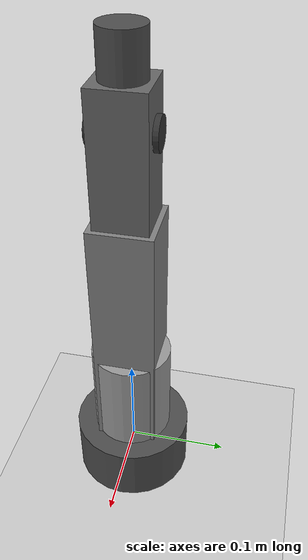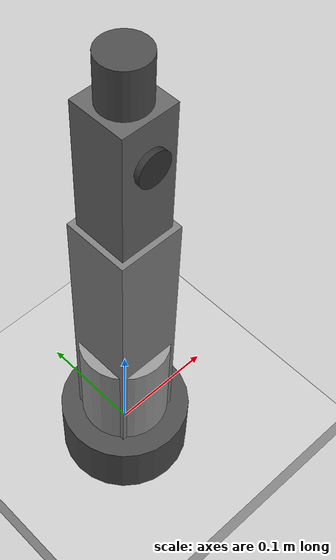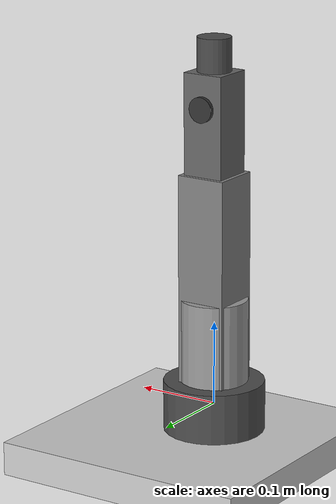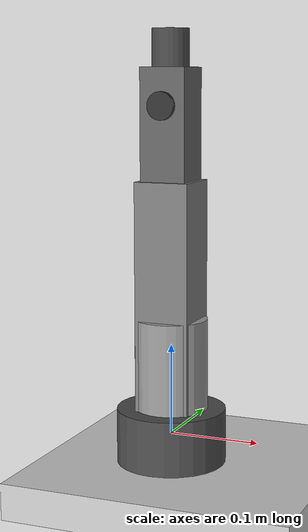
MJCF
<mujoco model="niryo_ned2_minimal">
      <compiler angle="radian" meshdir="meshes/"/>

      <option timestep="0.002" integrator="RK4"/>

      <asset>
        <material name="joint_material" rgba="0.2 0.2 0.2 1"/>
        <material name="link_material" rgba="0.7 0.7 0.7 1"/>
      </asset>

      <worldbody>
        <!-- Base -->
        <body name="base_link" pos="0 0 0">
          <geom name="base" type="cylinder" size="0.06 0.03" rgba="0.3 0.3 0.3 1"/>

          <!-- Joint 1 (Base rotation) -->
          <body name="shoulder_link" pos="0 0 0.05">
            <joint name="joint_1" type="hinge" axis="0 0 1" range="-2.97 2.97"/>
            <geom name="shoulder" type="cylinder" size="0.04 0.08" rgba="0.6 0.6 0.6 1"/>

            <!-- Joint 2 (Shoulder) -->
            <body name="arm_link" pos="0 0 0.08" euler="1.57 0 0">
              <joint name="joint_2" type="hinge" axis="0 0 1" range="-1.57 0.64"/>
              <geom name="arm" type="box" size="0.03 0.15 0.03" rgba="0.5 0.5 0.5 1"/>

              <!-- Joint 3 (Elbow) -->
              <body name="forearm_link" pos="0 0.15 0" euler="0 0 0">
                <joint name="joint_3" type="hinge" axis="0 0 1" range="-1.4 1.4"/>
                <geom name="forearm" type="box" size="0.025 0.12 0.025" rgba="0.4 0.4 0.4 1"/>

                <!-- Joint 4 (Wrist 1) -->
                <body name="wrist_link" pos="0 0.12 0" euler="1.57 0 0">
                  <joint name="joint_4" type="hinge" axis="0 0 1" range="-2.0 2.0"/>
                  <geom name="wrist" type="cylinder" size="0.02 0.04" rgba="0.3 0.3 0.3 1"/>

                  <!-- Joint 5 (Wrist 2) -->
                  <body name="wrist2_link" pos="0 0 0.04" euler="-1.57 0 0">
                    <joint name="joint_5" type="hinge" axis="0 0 1" range="-1.7 1.7"/>
                    <geom name="wrist2" type="cylinder" size="0.015 0.03" rgba="0.2 0.2 0.2 1"/>

                    <!-- Joint 6 (Wrist 3) -->
                    <body name="hand_link" pos="0 0.03 0" euler="1.57 0 0">
                      <joint name="joint_6" type="hinge" axis="0 0 1" range="-2.57 2.57"/>
                      <geom name="hand" type="cylinder" size="0.01 0.02" rgba="0.1 0.1 0.1 1"/>

                      <!-- End effector site -->
                      <site name="end_effector" pos="0 0 0.02" size="0.01"/>
                    </body>
                  </body>
                </body>
              </body>
            </body>
          </body>
        </body>

        <!-- Ground plane -->
        <geom name="floor" pos="0 0 -0.05" size="1 1 0.02" type="box" rgba="0.8 0.8 0.8 1"/>
      </worldbody>

      <actuator>
        <motor name="motor_1" joint="joint_1" gear="1"/>
        <motor name="motor_2" joint="joint_2" gear="1"/>
        <motor name="motor_3" joint="joint_3" gear="1"/>
        <motor name="motor_4" joint="joint_4" gear="1"/>
        <motor name="motor_5" joint="joint_5" gear="1"/>
        <motor name="motor_6" joint="joint_6" gear="1"/>
      </actuator>
    </mujoco>
